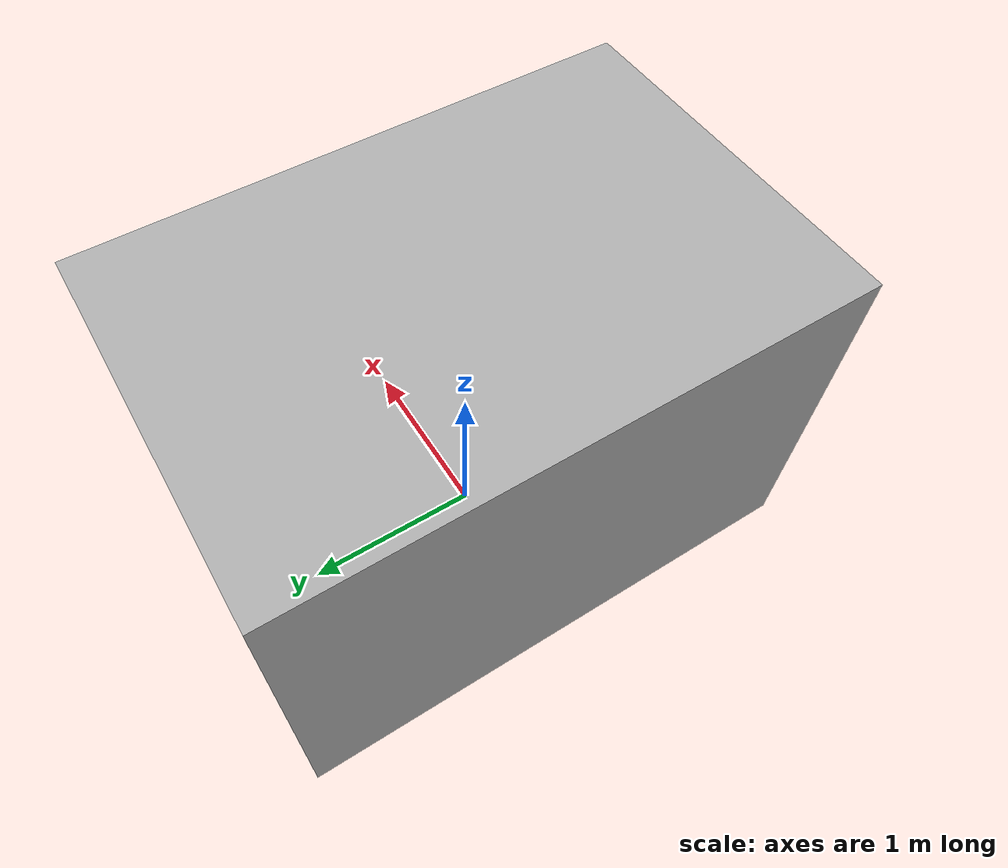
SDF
<?xml version="1.0" ?><sdf version="1.6">
  <model name="Marker10">
    <static>true</static>
    <link name="link">
      <visual name="visual">
        <geometry>
          <mesh>
            <uri>model://marker10/meshes/Marker10.dae</uri>
          <scale>1 1.5 1</scale></mesh>
        </geometry>
      </visual>
    </link>
  </model>
</sdf>
